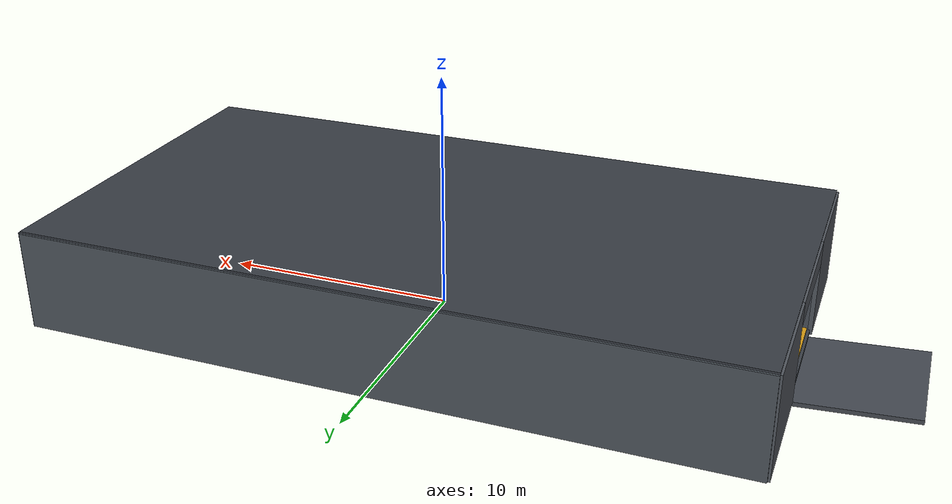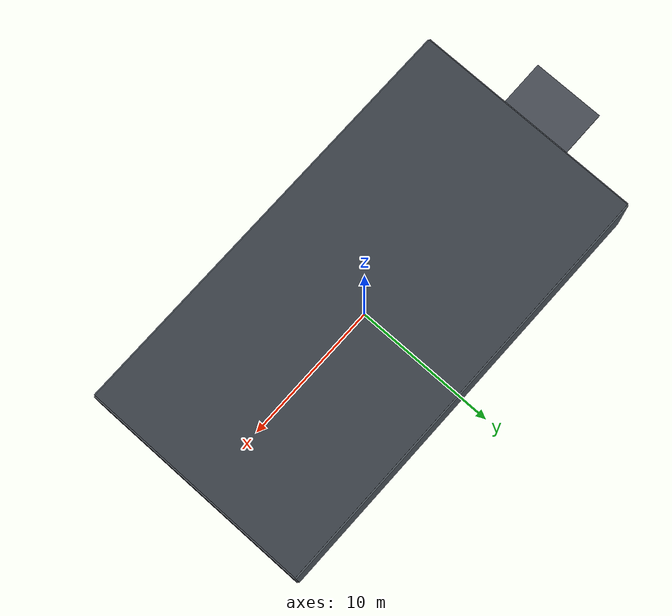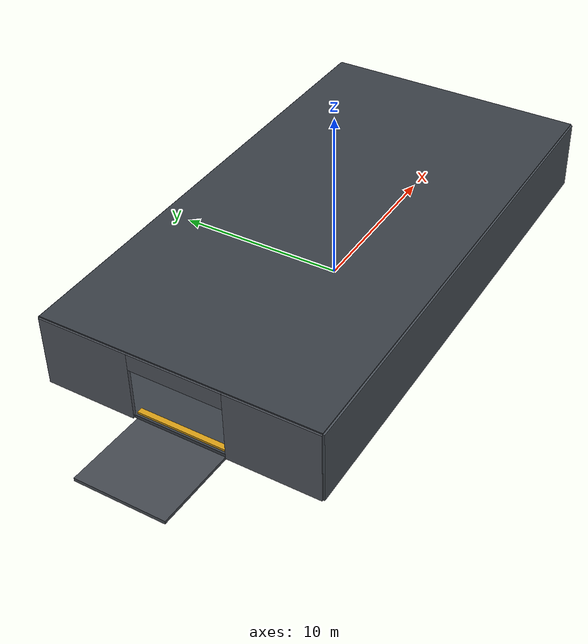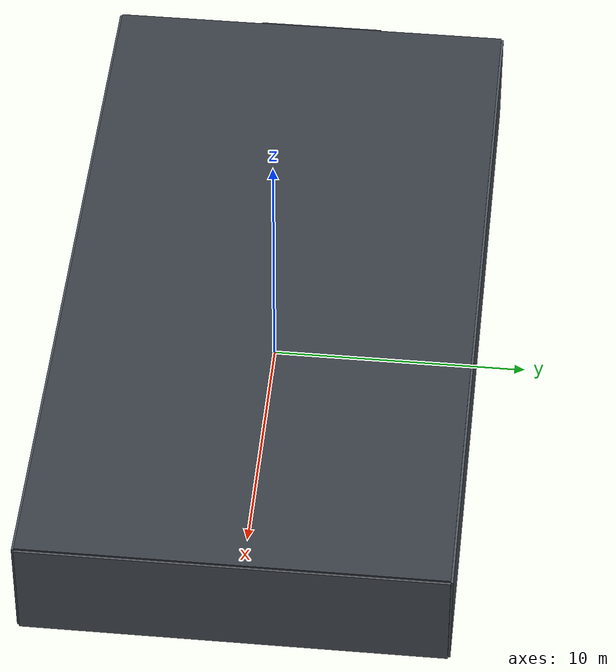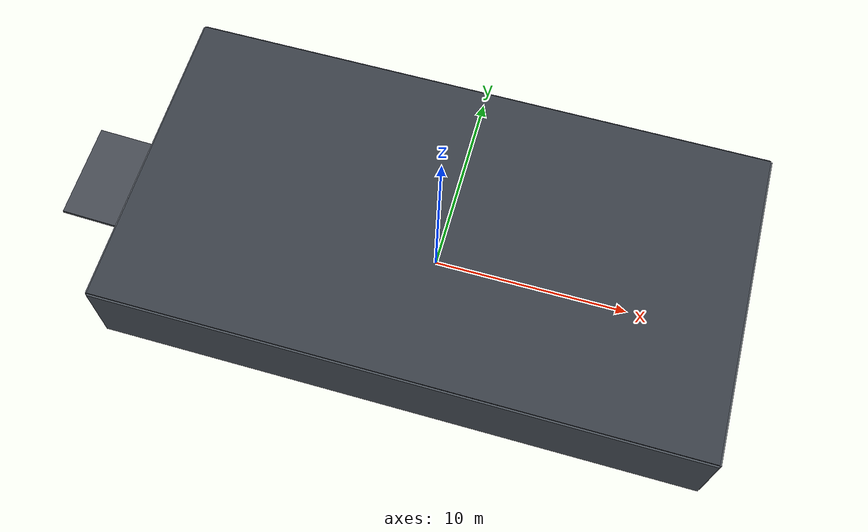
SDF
<sdf version="1.7">
 <world name="ev_car_carrier_deck_world">
  <model name="vehicle_deck_structure">
   <static>true</static>
   <link name="link">
    <collision name="deck_floor_collision">
     <pose>0.0000 0.0000 0.1000 0.0000 0.0000 0.0000</pose>
     <geometry><box><size>30.0 16.0 0.2</size></box></geometry>
    </collision>
    <visual name="deck_floor_visual">
     <pose>0.0000 0.0000 0.1000 0.0000 0.0000 0.0000</pose>
     <geometry><box><size>30.0 16.0 0.2</size></box></geometry>
     <material><ambient>0.23 0.25 0.28 1</ambient><diffuse>0.23 0.25 0.28 1</diffuse></material>
    </visual>
    <collision name="ceiling_collision">
     <pose>0.0000 0.0000 4.2000 0.0000 0.0000 0.0000</pose>
     <geometry><box><size>30.0 16.0 0.16</size></box></geometry>
    </collision>
    <visual name="ceiling_visual">
     <pose>0.0000 0.0000 4.2000 0.0000 0.0000 0.0000</pose>
     <geometry><box><size>30.0 16.0 0.16</size></box></geometry>
     <material><ambient>0.22 0.24 0.27 1</ambient><diffuse>0.22 0.24 0.27 1</diffuse></material>
    </visual>
    <collision name="port_wall_collision">
     <pose>0.0000 8.0000 2.1000 0.0000 0.0000 0.0000</pose>
     <geometry><box><size>30.0 0.18 4.2</size></box></geometry>
    </collision>
    <visual name="port_wall_visual">
     <pose>0.0000 8.0000 2.1000 0.0000 0.0000 0.0000</pose>
     <geometry><box><size>30.0 0.18 4.2</size></box></geometry>
     <material><ambient>0.3 0.33 0.36 1</ambient><diffuse>0.3 0.33 0.36 1</diffuse></material>
    </visual>
    <collision name="starboard_wall_collision">
     <pose>0.0000 -8.0000 2.1000 0.0000 0.0000 0.0000</pose>
     <geometry><box><size>30.0 0.18 4.2</size></box></geometry>
    </collision>
    <visual name="starboard_wall_visual">
     <pose>0.0000 -8.0000 2.1000 0.0000 0.0000 0.0000</pose>
     <geometry><box><size>30.0 0.18 4.2</size></box></geometry>
     <material><ambient>0.3 0.33 0.36 1</ambient><diffuse>0.3 0.33 0.36 1</diffuse></material>
    </visual>
    <collision name="forward_bulkhead_collision">
     <pose>15.0000 0.0000 2.1000 0.0000 0.0000 0.0000</pose>
     <geometry><box><size>0.18 16.0 4.2</size></box></geometry>
    </collision>
    <visual name="forward_bulkhead_visual">
     <pose>15.0000 0.0000 2.1000 0.0000 0.0000 0.0000</pose>
     <geometry><box><size>0.18 16.0 4.2</size></box></geometry>
     <material><ambient>0.32 0.34 0.37 1</ambient><diffuse>0.32 0.34 0.37 1</diffuse></material>
    </visual>
    <collision name="aft_bulkhead_left_collision">
     <pose>-15.0000 5.3500 2.1000 0.0000 0.0000 0.0000</pose>
     <geometry><box><size>0.18 5.3 4.2</size></box></geometry>
    </collision>
    <visual name="aft_bulkhead_left_visual">
     <pose>-15.0000 5.3500 2.1000 0.0000 0.0000 0.0000</pose>
     <geometry><box><size>0.18 5.3 4.2</size></box></geometry>
     <material><ambient>0.32 0.34 0.37 1</ambient><diffuse>0.32 0.34 0.37 1</diffuse></material>
    </visual>
    <collision name="aft_bulkhead_right_collision">
     <pose>-15.0000 -5.3500 2.1000 0.0000 0.0000 0.0000</pose>
     <geometry><box><size>0.18 5.3 4.2</size></box></geometry>
    </collision>
    <visual name="aft_bulkhead_right_visual">
     <pose>-15.0000 -5.3500 2.1000 0.0000 0.0000 0.0000</pose>
     <geometry><box><size>0.18 5.3 4.2</size></box></geometry>
     <material><ambient>0.32 0.34 0.37 1</ambient><diffuse>0.32 0.34 0.37 1</diffuse></material>
    </visual>
    <collision name="aft_bulkhead_top_collision">
     <pose>-15.0000 0.0000 3.7000 0.0000 0.0000 0.0000</pose>
     <geometry><box><size>0.18 5.4 1.0</size></box></geometry>
    </collision>
    <visual name="aft_bulkhead_top_visual">
     <pose>-15.0000 0.0000 3.7000 0.0000 0.0000 0.0000</pose>
     <geometry><box><size>0.18 5.4 1.0</size></box></geometry>
     <material><ambient>0.32 0.34 0.37 1</ambient><diffuse>0.32 0.34 0.37 1</diffuse></material>
    </visual>
    <collision name="aft_ramp_collision">
     <pose>-17.2500 0.0000 -0.0200 0.0000 0.0600 0.0000</pose>
     <geometry><box><size>5.0 5.2 0.18</size></box></geometry>
    </collision>
    <visual name="aft_ramp_visual">
     <pose>-17.2500 0.0000 -0.0200 0.0000 0.0600 0.0000</pose>
     <geometry><box><size>5.0 5.2 0.18</size></box></geometry>
     <material><ambient>0.27 0.29 0.32 1</ambient><diffuse>0.27 0.29 0.32 1</diffuse></material>
    </visual>
    <collision name="door_threshold_collision">
     <pose>-14.7200 0.0000 0.2600 0.0000 0.0000 0.0000</pose>
     <geometry><box><size>0.32 5.2 0.12</size></box></geometry>
    </collision>
    <visual name="door_threshold_visual">
     <pose>-14.7200 0.0000 0.2600 0.0000 0.0000 0.0000</pose>
     <geometry><box><size>0.32 5.2 0.12</size></box></geometry>
     <material><ambient>0.85 0.62 0.08 1</ambient><diffuse>0.85 0.62 0.08 1</diffuse></material>
    </visual>
    <collision name="column_-12_-7.15_collision">
     <pose>-12.0000 -7.1500 2.1000 0.0000 0.0000 0.0000</pose>
     <geometry><box><size>0.28 0.28 4.0</size></box></geometry>
    </collision>
    <visual name="column_-12_-7.15_visual">
     <pose>-12.0000 -7.1500 2.1000 0.0000 0.0000 0.0000</pose>
     <geometry><box><size>0.28 0.28 4.0</size></box></geometry>
     <material><ambient>0.42 0.45 0.48 1</ambient><diffuse>0.42 0.45 0.48 1</diffuse></material>
    </visual>
    <collision name="column_-12_-0.95_collision">
     <pose>-12.0000 -0.9500 2.1000 0.0000 0.0000 0.0000</pose>
     <geometry><box><size>0.28 0.28 4.0</size></box></geometry>
    </collision>
    <visual name="column_-12_-0.95_visual">
     <pose>-12.0000 -0.9500 2.1000 0.0000 0.0000 0.0000</pose>
     <geometry><box><size>0.28 0.28 4.0</size></box></geometry>
     <material><ambient>0.42 0.45 0.48 1</ambient><diffuse>0.42 0.45 0.48 1</diffuse></material>
    </visual>
    <collision name="column_-12_0.95_collision">
     <pose>-12.0000 0.9500 2.1000 0.0000 0.0000 0.0000</pose>
     <geometry><box><size>0.28 0.28 4.0</size></box></geometry>
    </collision>
    <visual name="column_-12_0.95_visual">
     <pose>-12.0000 0.9500 2.1000 0.0000 0.0000 0.0000</pose>
     <geometry><box><size>0.28 0.28 4.0</size></box></geometry>
     <material><ambient>0.42 0.45 0.48 1</ambient><diffuse>0.42 0.45 0.48 1</diffuse></material>
    </visual>
    <collision name="column_-12_7.15_collision">
     <pose>-12.0000 7.1500 2.1000 0.0000 0.0000 0.0000</pose>
     <geometry><box><size>0.28 0.28 4.0</size></box></geometry>
    </collision>
    <visual name="column_-12_7.15_visual">
     <pose>-12.0000 7.1500 2.1000 0.0000 0.0000 0.0000</pose>
     <geometry><box><size>0.28 0.28 4.0</size></box></geometry>
     <material><ambient>0.42 0.45 0.48 1</ambient><diffuse>0.42 0.45 0.48 1</diffuse></material>
    </visual>
    <collision name="cross_beam_-12_collision">
     <pose>-12.0000 0.0000 3.9200 0.0000 0.0000 0.0000</pose>
     <geometry><box><size>0.32 15.5 0.3</size></box></geometry>
    </collision>
    <visual name="cross_beam_-12_visual">
     <pose>-12.0000 0.0000 3.9200 0.0000 0.0000 0.0000</pose>
     <geometry><box><size>0.32 15.5 0.3</size></box></geometry>
     <material><ambient>0.4 0.43 0.46 1</ambient><diffuse>0.4 0.43 0.46 1</diffuse></material>
    </visual>
    <collision name="column_-8_-7.15_collision">
     <pose>-8.0000 -7.1500 2.1000 0.0000 0.0000 0.0000</pose>
     <geometry><box><size>0.28 0.28 4.0</size></box></geometry>
    </collision>
    <visual name="column_-8_-7.15_visual">
     <pose>-8.0000 -7.1500 2.1000 0.0000 0.0000 0.0000</pose>
     <geometry><box><size>0.28 0.28 4.0</size></box></geometry>
     <material><ambient>0.42 0.45 0.48 1</ambient><diffuse>0.42 0.45 0.48 1</diffuse></material>
    </visual>
    <collision name="column_-8_-0.95_collision">
     <pose>-8.0000 -0.9500 2.1000 0.0000 0.0000 0.0000</pose>
     <geometry><box><size>0.28 0.28 4.0</size></box></geometry>
    </collision>
    <visual name="column_-8_-0.95_visual">
     <pose>-8.0000 -0.9500 2.1000 0.0000 0.0000 0.0000</pose>
     <geometry><box><size>0.28 0.28 4.0</size></box></geometry>
     <material><ambient>0.42 0.45 0.48 1</ambient><diffuse>0.42 0.45 0.48 1</diffuse></material>
    </visual>
    <collision name="column_-8_0.95_collision">
     <pose>-8.0000 0.9500 2.1000 0.0000 0.0000 0.0000</pose>
     <geometry><box><size>0.28 0.28 4.0</size></box></geometry>
    </collision>
    <visual name="column_-8_0.95_visual">
     <pose>-8.0000 0.9500 2.1000 0.0000 0.0000 0.0000</pose>
     <geometry><box><size>0.28 0.28 4.0</size></box></geometry>
     <material><ambient>0.42 0.45 0.48 1</ambient><diffuse>0.42 0.45 0.48 1</diffuse></material>
    </visual>
    <collision name="column_-8_7.15_collision">
     <pose>-8.0000 7.1500 2.1000 0.0000 0.0000 0.0000</pose>
     <geometry><box><size>0.28 0.28 4.0</size></box></geometry>
    </collision>
    <visual name="column_-8_7.15_visual">
     <pose>-8.0000 7.1500 2.1000 0.0000 0.0000 0.0000</pose>
     <geometry><box><size>0.28 0.28 4.0</size></box></geometry>
     <material><ambient>0.42 0.45 0.48 1</ambient><diffuse>0.42 0.45 0.48 1</diffuse></material>
    </visual>
    <collision name="cross_beam_-8_collision">
     <pose>-8.0000 0.0000 3.9200 0.0000 0.0000 0.0000</pose>
     <geometry><box><size>0.32 15.5 0.3</size></box></geometry>
    </collision>
    <visual name="cross_beam_-8_visual">
     <pose>-8.0000 0.0000 3.9200 0.0000 0.0000 0.0000</pose>
     <geometry><box><size>0.32 15.5 0.3</size></box></geometry>
     <material><ambient>0.4 0.43 0.46 1</ambient><diffuse>0.4 0.43 0.46 1</diffuse></material>
    </visual>
    <collision name="column_-4_-7.15_collision">
     <pose>-4.0000 -7.1500 2.1000 0.0000 0.0000 0.0000</pose>
     <geometry><box><size>0.28 0.28 4.0</size></box></geometry>
    </collision>
    <visual name="column_-4_-7.15_visual">
     <pose>-4.0000 -7.1500 2.1000 0.0000 0.0000 0.0000</pose>
     <geometry><box><size>0.28 0.28 4.0</size></box></geometry>
     <material><ambient>0.42 0.45 0.48 1</ambient><diffuse>0.42 0.45 0.48 1</diffuse></material>
    </visual>
    <collision name="column_-4_-0.95_collision">
     <pose>-4.0000 -0.9500 2.1000 0.0000 0.0000 0.0000</pose>
     <geometry><box><size>0.28 0.28 4.0</size></box></geometry>
    </collision>
    <visual name="column_-4_-0.95_visual">
     <pose>-4.0000 -0.9500 2.1000 0.0000 0.0000 0.0000</pose>
     <geometry><box><size>0.28 0.28 4.0</size></box></geometry>
     <material><ambient>0.42 0.45 0.48 1</ambient><diffuse>0.42 0.45 0.48 1</diffuse></material>
    </visual>
    <collision name="column_-4_0.95_collision">
     <pose>-4.0000 0.9500 2.1000 0.0000 0.0000 0.0000</pose>
     <geometry><box><size>0.28 0.28 4.0</size></box></geometry>
    </collision>
    <visual name="column_-4_0.95_visual">
     <pose>-4.0000 0.9500 2.1000 0.0000 0.0000 0.0000</pose>
     <geometry><box><size>0.28 0.28 4.0</size></box></geometry>
     <material><ambient>0.42 0.45 0.48 1</ambient><diffuse>0.42 0.45 0.48 1</diffuse></material>
    </visual>
    <collision name="column_-4_7.15_collision">
     <pose>-4.0000 7.1500 2.1000 0.0000 0.0000 0.0000</pose>
     <geometry><box><size>0.28 0.28 4.0</size></box></geometry>
    </collision>
    <visual name="column_-4_7.15_visual">
     <pose>-4.0000 7.1500 2.1000 0.0000 0.0000 0.0000</pose>
     <geometry><box><size>0.28 0.28 4.0</size></box></geometry>
     <material><ambient>0.42 0.45 0.48 1</ambient><diffuse>0.42 0.45 0.48 1</diffuse></material>
    </visual>
    <collision name="cross_beam_-4_collision">
     <pose>-4.0000 0.0000 3.9200 0.0000 0.0000 0.0000</pose>
     <geometry><box><size>0.32 15.5 0.3</size></box></geometry>
    </collision>
    <visual name="cross_beam_-4_visual">
     <pose>-4.0000 0.0000 3.9200 0.0000 0.0000 0.0000</pose>
     <geometry><box><size>0.32 15.5 0.3</size></box></geometry>
     <material><ambient>0.4 0.43 0.46 1</ambient><diffuse>0.4 0.43 0.46 1</diffuse></material>
    </visual>
    <collision name="column_0_-7.15_collision">
     <pose>0.0000 -7.1500 2.1000 0.0000 0.0000 0.0000</pose>
     <geometry><box><size>0.28 0.28 4.0</size></box></geometry>
    </collision>
    <visual name="column_0_-7.15_visual">
     <pose>0.0000 -7.1500 2.1000 0.0000 0.0000 0.0000</pose>
     <geometry><box><size>0.28 0.28 4.0</size></box></geometry>
     <material><ambient>0.42 0.45 0.48 1</ambient><diffuse>0.42 0.45 0.48 1</diffuse></material>
    </visual>
    <collision name="column_0_-0.95_collision">
     <pose>0.0000 -0.9500 2.1000 0.0000 0.0000 0.0000</pose>
     <geometry><box><size>0.28 0.28 4.0</size></box></geometry>
    </collision>
    <visual name="column_0_-0.95_visual">
     <pose>0.0000 -0.9500 2.1000 0.0000 0.0000 0.0000</pose>
     <geometry><box><size>0.28 0.28 4.0</size></box></geometry>
     <material><ambient>0.42 0.45 0.48 1</ambient><diffuse>0.42 0.45 0.48 1</diffuse></material>
    </visual>
    <collision name="column_0_0.95_collision">
     <pose>0.0000 0.9500 2.1000 0.0000 0.0000 0.0000</pose>
     <geometry><box><size>0.28 0.28 4.0</size></box></geometry>
    </collision>
    <visual name="column_0_0.95_visual">
     <pose>0.0000 0.9500 2.1000 0.0000 0.0000 0.0000</pose>
     <geometry><box><size>0.28 0.28 4.0</size></box></geometry>
     <material><ambient>0.42 0.45 0.48 1</ambient><diffuse>0.42 0.45 0.48 1</diffuse></material>
    </visual>
    <collision name="column_0_7.15_collision">
     <pose>0.0000 7.1500 2.1000 0.0000 0.0000 0.0000</pose>
     <geometry><box><size>0.28 0.28 4.0</size></box></geometry>
    </collision>
    <visual name="column_0_7.15_visual">
     <pose>0.0000 7.1500 2.1000 0.0000 0.0000 0.0000</pose>
     <geometry><box><size>0.28 0.28 4.0</size></box></geometry>
     <material><ambient>0.42 0.45 0.48 1</ambient><diffuse>0.42 0.45 0.48 1</diffuse></material>
    </visual>
    <collision name="cross_beam_0_collision">
     <pose>0.0000 0.0000 3.9200 0.0000 0.0000 0.0000</pose>
     <geometry><box><size>0.32 15.5 0.3</size></box></geometry>
    </collision>
    <visual name="cross_beam_0_visual">
     <pose>0.0000 0.0000 3.9200 0.0000 0.0000 0.0000</pose>
     <geometry><box><size>0.32 15.5 0.3</size></box></geometry>
     <material><ambient>0.4 0.43 0.46 1</ambient><diffuse>0.4 0.43 0.46 1</diffuse></material>
    </visual>
    <collision name="column_4_-7.15_collision">
     <pose>4.0000 -7.1500 2.1000 0.0000 0.0000 0.0000</pose>
     <geometry><box><size>0.28 0.28 4.0</size></box></geometry>
    </collision>
    <visual name="column_4_-7.15_visual">
     <pose>4.0000 -7.1500 2.1000 0.0000 0.0000 0.0000</pose>
     <geometry><box><size>0.28 0.28 4.0</size></box></geometry>
     <material><ambient>0.42 0.45 0.48 1</ambient><diffuse>0.42 0.45 0.48 1</diffuse></material>
    </visual>
    <collision name="column_4_-0.95_collision">
     <pose>4.0000 -0.9500 2.1000 0.0000 0.0000 0.0000</pose>
     <geometry><box><size>0.28 0.28 4.0</size></box></geometry>
    </collision>
    <visual name="column_4_-0.95_visual">
     <pose>4.0000 -0.9500 2.1000 0.0000 0.0000 0.0000</pose>
     <geometry><box><size>0.28 0.28 4.0</size></box></geometry>
     <material><ambient>0.42 0.45 0.48 1</ambient><diffuse>0.42 0.45 0.48 1</diffuse></material>
    </visual>
    <collision name="column_4_0.95_collision">
     <pose>4.0000 0.9500 2.1000 0.0000 0.0000 0.0000</pose>
     <geometry><box><size>0.28 0.28 4.0</size></box></geometry>
    </collision>
    <visual name="column_4_0.95_visual">
     <pose>4.0000 0.9500 2.1000 0.0000 0.0000 0.0000</pose>
     <geometry><box><size>0.28 0.28 4.0</size></box></geometry>
     <material><ambient>0.42 0.45 0.48 1</ambient><diffuse>0.42 0.45 0.48 1</diffuse></material>
    </visual>
    <collision name="column_4_7.15_collision">
     <pose>4.0000 7.1500 2.1000 0.0000 0.0000 0.0000</pose>
     <geometry><box><size>0.28 0.28 4.0</size></box></geometry>
    </collision>
    <visual name="column_4_7.15_visual">
     <pose>4.0000 7.1500 2.1000 0.0000 0.0000 0.0000</pose>
     <geometry><box><size>0.28 0.28 4.0</size></box></geometry>
     <material><ambient>0.42 0.45 0.48 1</ambient><diffuse>0.42 0.45 0.48 1</diffuse></material>
    </visual>
    <collision name="cross_beam_4_collision">
     <pose>4.0000 0.0000 3.9200 0.0000 0.0000 0.0000</pose>
     <geometry><box><size>0.32 15.5 0.3</size></box></geometry>
    </collision>
    <visual name="cross_beam_4_visual">
     <pose>4.0000 0.0000 3.9200 0.0000 0.0000 0.0000</pose>
     <geometry><box><size>0.32 15.5 0.3</size></box></geometry>
     <material><ambient>0.4 0.43 0.46 1</ambient><diffuse>0.4 0.43 0.46 1</diffuse></material>
    </visual>
    <collision name="column_8_-7.15_collision">
     <pose>8.0000 -7.1500 2.1000 0.0000 0.0000 0.0000</pose>
     <geometry><box><size>0.28 0.28 4.0</size></box></geometry>
    </collision>
    <visual name="column_8_-7.15_visual">
     <pose>8.0000 -7.1500 2.1000 0.0000 0.0000 0.0000</pose>
     <geometry><box><size>0.28 0.28 4.0</size></box></geometry>
     <material><ambient>0.42 0.45 0.48 1</ambient><diffuse>0.42 0.45 0.48 1</diffuse></material>
    </visual>
    <collision name="column_8_-0.95_collision">
     <pose>8.0000 -0.9500 2.1000 0.0000 0.0000 0.0000</pose>
     <geometry><box><size>0.28 0.28 4.0</size></box></geometry>
    </collision>
    <visual name="column_8_-0.95_visual">
     <pose>8.0000 -0.9500 2.1000 0.0000 0.0000 0.0000</pose>
     <geometry><box><size>0.28 0.28 4.0</size></box></geometry>
     <material><ambient>0.42 0.45 0.48 1</ambient><diffuse>0.42 0.45 0.48 1</diffuse></material>
    </visual>
    <collision name="column_8_0.95_collision">
     <pose>8.0000 0.9500 2.1000 0.0000 0.0000 0.0000</pose>
     <geometry><box><size>0.28 0.28 4.0</size></box></geometry>
    </collision>
    <visual name="column_8_0.95_visual">
     <pose>8.0000 0.9500 2.1000 0.0000 0.0000 0.0000</pose>
     <geometry><box><size>0.28 0.28 4.0</size></box></geometry>
     <material><ambient>0.42 0.45 0.48 1</ambient><diffuse>0.42 0.45 0.48 1</diffuse></material>
    </visual>
    <collision name="column_8_7.15_collision">
     <pose>8.0000 7.1500 2.1000 0.0000 0.0000 0.0000</pose>
     <geometry><box><size>0.28 0.28 4.0</size></box></geometry>
    </collision>
    <visual name="column_8_7.15_visual">
     <pose>8.0000 7.1500 2.1000 0.0000 0.0000 0.0000</pose>
     <geometry><box><size>0.28 0.28 4.0</size></box></geometry>
     <material><ambient>0.42 0.45 0.48 1</ambient><diffuse>0.42 0.45 0.48 1</diffuse></material>
    </visual>
    <collision name="cross_beam_8_collision">
     <pose>8.0000 0.0000 3.9200 0.0000 0.0000 0.0000</pose>
     <geometry><box><size>0.32 15.5 0.3</size></box></geometry>
    </collision>
    <visual name="cross_beam_8_visual">
     <pose>8.0000 0.0000 3.9200 0.0000 0.0000 0.0000</pose>
     <geometry><box><size>0.32 15.5 0.3</size></box></geometry>
     <material><ambient>0.4 0.43 0.46 1</ambient><diffuse>0.4 0.43 0.46 1</diffuse></material>
    </visual>
    <collision name="column_12_-7.15_collision">
     <pose>12.0000 -7.1500 2.1000 0.0000 0.0000 0.0000</pose>
     <geometry><box><size>0.28 0.28 4.0</size></box></geometry>
    </collision>
    <visual name="column_12_-7.15_visual">
     <pose>12.0000 -7.1500 2.1000 0.0000 0.0000 0.0000</pose>
     <geometry><box><size>0.28 0.28 4.0</size></box></geometry>
     <material><ambient>0.42 0.45 0.48 1</ambient><diffuse>0.42 0.45 0.48 1</diffuse></material>
    </visual>
    <collision name="column_12_-0.95_collision">
     <pose>12.0000 -0.9500 2.1000 0.0000 0.0000 0.0000</pose>
     <geometry><box><size>0.28 0.28 4.0</size></box></geometry>
    </collision>
    <visual name="column_12_-0.95_visual">
     <pose>12.0000 -0.9500 2.1000 0.0000 0.0000 0.0000</pose>
     <geometry><box><size>0.28 0.28 4.0</size></box></geometry>
     <material><ambient>0.42 0.45 0.48 1</ambient><diffuse>0.42 0.45 0.48 1</diffuse></material>
    </visual>
    <collision name="column_12_0.95_collision">
     <pose>12.0000 0.9500 2.1000 0.0000 0.0000 0.0000</pose>
     <geometry><box><size>0.28 0.28 4.0</size></box></geometry>
    </collision>
    <visual name="column_12_0.95_visual">
     <pose>12.0000 0.9500 2.1000 0.0000 0.0000 0.0000</pose>
     <geometry><box><size>0.28 0.28 4.0</size></box></geometry>
     <material><ambient>0.42 0.45 0.48 1</ambient><diffuse>0.42 0.45 0.48 1</diffuse></material>
    </visual>
    <collision name="column_12_7.15_collision">
     <pose>12.0000 7.1500 2.1000 0.0000 0.0000 0.0000</pose>
     <geometry><box><size>0.28 0.28 4.0</size></box></geometry>
    </collision>
    <visual name="column_12_7.15_visual">
     <pose>12.0000 7.1500 2.1000 0.0000 0.0000 0.0000</pose>
     <geometry><box><size>0.28 0.28 4.0</size></box></geometry>
     <material><ambient>0.42 0.45 0.48 1</ambient><diffuse>0.42 0.45 0.48 1</diffuse></material>
    </visual>
    <collision name="cross_beam_12_collision">
     <pose>12.0000 0.0000 3.9200 0.0000 0.0000 0.0000</pose>
     <geometry><box><size>0.32 15.5 0.3</size></box></geometry>
    </collision>
    <visual name="cross_beam_12_visual">
     <pose>12.0000 0.0000 3.9200 0.0000 0.0000 0.0000</pose>
     <geometry><box><size>0.32 15.5 0.3</size></box></geometry>
     <material><ambient>0.4 0.43 0.46 1</ambient><diffuse>0.4 0.43 0.46 1</diffuse></material>
    </visual>
    <collision name="long_beam_-7.15_collision">
     <pose>0.0000 -7.1500 3.9200 0.0000 0.0000 0.0000</pose>
     <geometry><box><size>29.5 0.24 0.28</size></box></geometry>
    </collision>
    <visual name="long_beam_-7.15_visual">
     <pose>0.0000 -7.1500 3.9200 0.0000 0.0000 0.0000</pose>
     <geometry><box><size>29.5 0.24 0.28</size></box></geometry>
     <material><ambient>0.39 0.42 0.45 1</ambient><diffuse>0.39 0.42 0.45 1</diffuse></material>
    </visual>
    <collision name="long_beam_-3.7_collision">
     <pose>0.0000 -3.7000 3.9200 0.0000 0.0000 0.0000</pose>
     <geometry><box><size>29.5 0.24 0.28</size></box></geometry>
    </collision>
    <visual name="long_beam_-3.7_visual">
     <pose>0.0000 -3.7000 3.9200 0.0000 0.0000 0.0000</pose>
     <geometry><box><size>29.5 0.24 0.28</size></box></geometry>
     <material><ambient>0.39 0.42 0.45 1</ambient><diffuse>0.39 0.42 0.45 1</diffuse></material>
    </visual>
    <collision name="long_beam_0_collision">
     <pose>0.0000 0.0000 3.9200 0.0000 0.0000 0.0000</pose>
     <geometry><box><size>29.5 0.24 0.28</size></box></geometry>
    </collision>
    <visual name="long_beam_0_visual">
     <pose>0.0000 0.0000 3.9200 0.0000 0.0000 0.0000</pose>
     <geometry><box><size>29.5 0.24 0.28</size></box></geometry>
     <material><ambient>0.39 0.42 0.45 1</ambient><diffuse>0.39 0.42 0.45 1</diffuse></material>
    </visual>
    <collision name="long_beam_3.7_collision">
     <pose>0.0000 3.7000 3.9200 0.0000 0.0000 0.0000</pose>
     <geometry><box><size>29.5 0.24 0.28</size></box></geometry>
    </collision>
    <visual name="long_beam_3.7_visual">
     <pose>0.0000 3.7000 3.9200 0.0000 0.0000 0.0000</pose>
     <geometry><box><size>29.5 0.24 0.28</size></box></geometry>
     <material><ambient>0.39 0.42 0.45 1</ambient><diffuse>0.39 0.42 0.45 1</diffuse></material>
    </visual>
    <collision name="long_beam_7.15_collision">
     <pose>0.0000 7.1500 3.9200 0.0000 0.0000 0.0000</pose>
     <geometry><box><size>29.5 0.24 0.28</size></box></geometry>
    </collision>
    <visual name="long_beam_7.15_visual">
     <pose>0.0000 7.1500 3.9200 0.0000 0.0000 0.0000</pose>
     <geometry><box><size>29.5 0.24 0.28</size></box></geometry>
     <material><ambient>0.39 0.42 0.45 1</ambient><diffuse>0.39 0.42 0.45 1</diffuse></material>
    </visual>
   </link>
  </model>
 </world>
</sdf>
